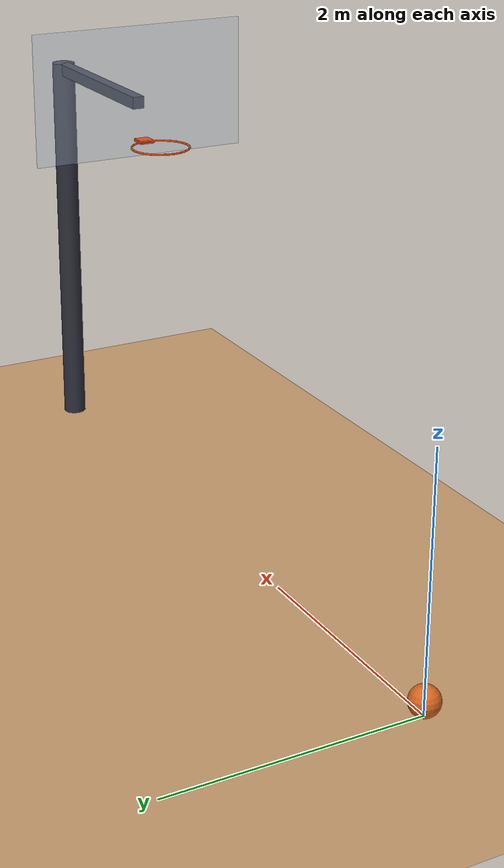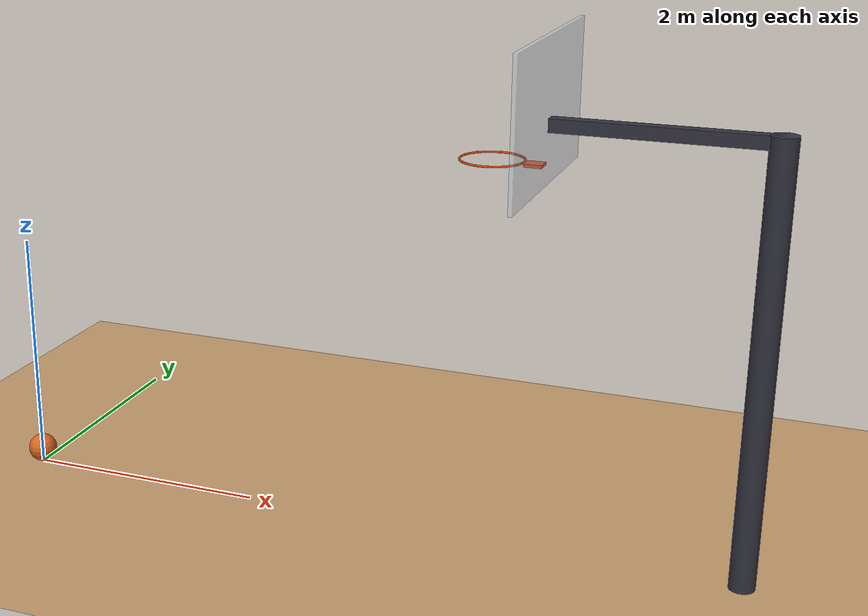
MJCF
<mujoco model="basketball_shot">
  <option timestep="0.002" gravity="0 0 -9.81"/>
  <visual>
    <global offwidth="1280" offheight="720"/>
  </visual>
  <asset>
    <material name="court" rgba="0.76 0.6 0.42 1"/>
    <material name="leather" rgba="0.85 0.4 0.12 1"/>
    <material name="steel" rgba="0.9 0.3 0.1 1"/>
    <material name="glass" rgba="0.8 0.9 1 0.35"/>
    <material name="post" rgba="0.2 0.2 0.25 1"/>
  </asset>
  <worldbody>
    <light name="sun" pos="2 -3 8" dir="0 0.3 -1" directional="true"/>
    <camera name="side" pos="2.5 -8 2.5" xyaxes="1 0 0 0 0.25 1"/>
    <geom name="floor" type="plane" size="12 12 0.1" material="court" solref="0.01 0.3"/>

    <body name="ball" pos="0 0 0.121">
      <freejoint name="ball_free"/>
      <inertial pos="0 0 0" mass="0.62" diaginertia="0.005952 0.005952 0.005952"/>
      <geom name="ball" type="sphere" size="0.12" material="leather" friction="0.8 0.01 0.001" solref="0.01 0.3"/>
    </body>

    <body name="hoop" pos="4 0 3.05">
      <geom name="rim_00" type="capsule" size="0.008" fromto="0.2366 0 0 0.22854 0.06124 0" material="steel"/>
      <geom name="rim_01" type="capsule" size="0.008" fromto="0.22854 0.06124 0 0.20490 0.11830 0" material="steel"/>
      <geom name="rim_02" type="capsule" size="0.008" fromto="0.20490 0.11830 0 0.16730 0.16730 0" material="steel"/>
      <geom name="rim_03" type="capsule" size="0.008" fromto="0.16730 0.16730 0 0.11830 0.20490 0" material="steel"/>
      <geom name="rim_04" type="capsule" size="0.008" fromto="0.11830 0.20490 0 0.06124 0.22854 0" material="steel"/>
      <geom name="rim_05" type="capsule" size="0.008" fromto="0.06124 0.22854 0 0 0.2366 0" material="steel"/>
      <geom name="rim_06" type="capsule" size="0.008" fromto="0 0.2366 0 -0.06124 0.22854 0" material="steel"/>
      <geom name="rim_07" type="capsule" size="0.008" fromto="-0.06124 0.22854 0 -0.11830 0.20490 0" material="steel"/>
      <geom name="rim_08" type="capsule" size="0.008" fromto="-0.11830 0.20490 0 -0.16730 0.16730 0" material="steel"/>
      <geom name="rim_09" type="capsule" size="0.008" fromto="-0.16730 0.16730 0 -0.20490 0.11830 0" material="steel"/>
      <geom name="rim_10" type="capsule" size="0.008" fromto="-0.20490 0.11830 0 -0.22854 0.06124 0" material="steel"/>
      <geom name="rim_11" type="capsule" size="0.008" fromto="-0.22854 0.06124 0 -0.2366 0 0" material="steel"/>
      <geom name="rim_12" type="capsule" size="0.008" fromto="-0.2366 0 0 -0.22854 -0.06124 0" material="steel"/>
      <geom name="rim_13" type="capsule" size="0.008" fromto="-0.22854 -0.06124 0 -0.20490 -0.11830 0" material="steel"/>
      <geom name="rim_14" type="capsule" size="0.008" fromto="-0.20490 -0.11830 0 -0.16730 -0.16730 0" material="steel"/>
      <geom name="rim_15" type="capsule" size="0.008" fromto="-0.16730 -0.16730 0 -0.11830 -0.20490 0" material="steel"/>
      <geom name="rim_16" type="capsule" size="0.008" fromto="-0.11830 -0.20490 0 -0.06124 -0.22854 0" material="steel"/>
      <geom name="rim_17" type="capsule" size="0.008" fromto="-0.06124 -0.22854 0 0 -0.2366 0" material="steel"/>
      <geom name="rim_18" type="capsule" size="0.008" fromto="0 -0.2366 0 0.06124 -0.22854 0" material="steel"/>
      <geom name="rim_19" type="capsule" size="0.008" fromto="0.06124 -0.22854 0 0.11830 -0.20490 0" material="steel"/>
      <geom name="rim_20" type="capsule" size="0.008" fromto="0.11830 -0.20490 0 0.16730 -0.16730 0" material="steel"/>
      <geom name="rim_21" type="capsule" size="0.008" fromto="0.16730 -0.16730 0 0.20490 -0.11830 0" material="steel"/>
      <geom name="rim_22" type="capsule" size="0.008" fromto="0.20490 -0.11830 0 0.22854 -0.06124 0" material="steel"/>
      <geom name="rim_23" type="capsule" size="0.008" fromto="0.22854 -0.06124 0 0.2366 0 0" material="steel"/>
      <geom name="bracket" type="box" pos="0.311 0 -0.012" size="0.068 0.06 0.012" material="steel"/>
    </body>

    <body name="backboard" pos="4.394 0 3.435">
      <geom name="board" type="box" size="0.015 0.915 0.535" material="glass"/>
      <geom name="arm" type="box" pos="0.81 0 -0.1" size="0.795 0.05 0.05" material="post"/>
      <geom name="pole" type="cylinder" fromto="1.606 0 -3.435 1.606 0 -0.05" size="0.1" material="post"/>
    </body>
  </worldbody>
  <keyframe>
    <key name="start" qpos="0 0 0.121 1 0 0 0" qvel="2.687 0 9.269 0 0 0"/>
  </keyframe>
</mujoco>
